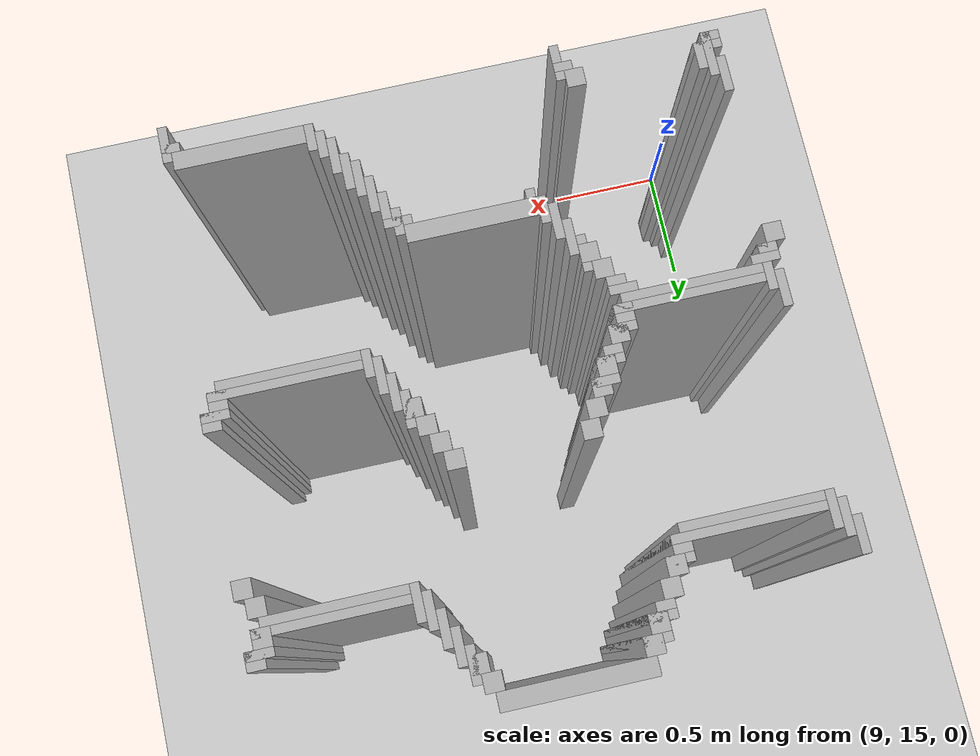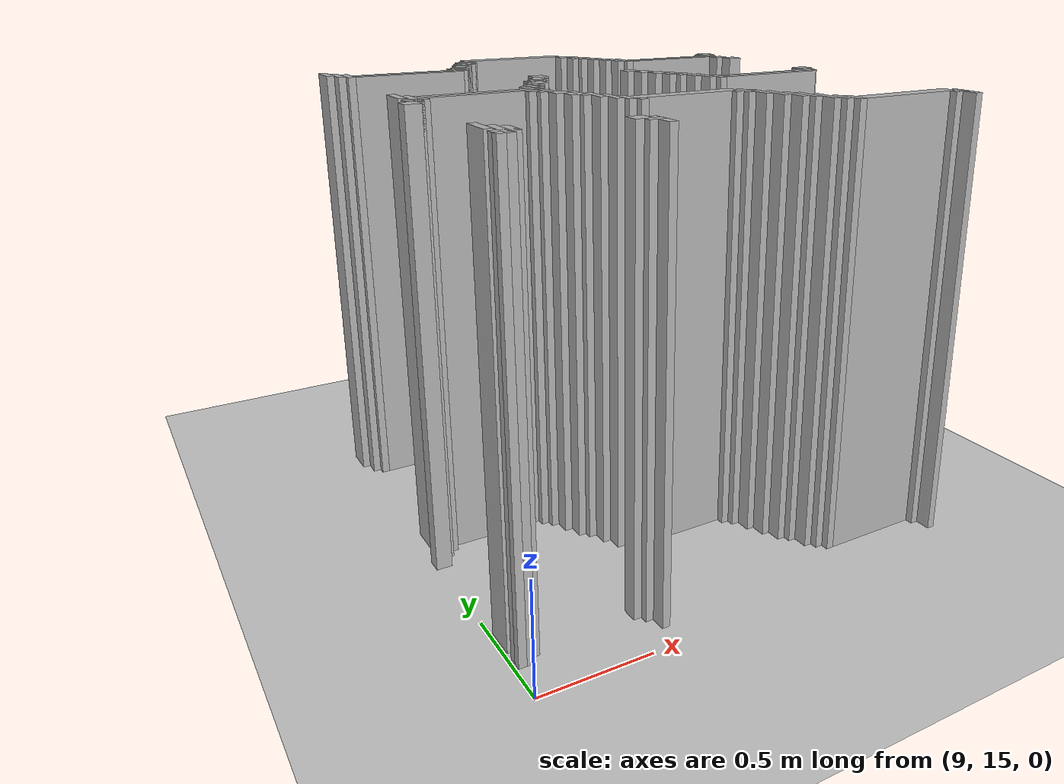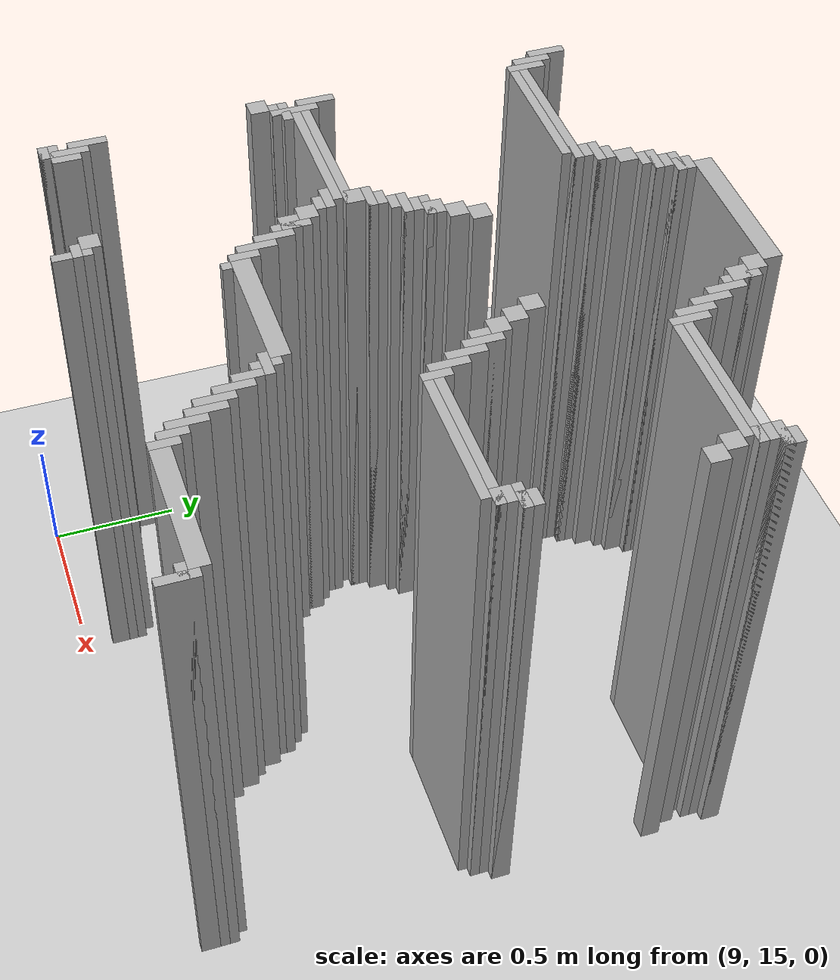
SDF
<sdf version="1.6">
 <world name="slam_world">
  <model name="ground_plane">
   <static>true</static>
   <link name="link">
    <collision name="collision">
     <geometry><plane><normal>0 0 1</normal><size>100 100</size></plane></geometry>
    </collision>
    <visual name="visual">
     <geometry><plane><normal>0 0 1</normal><size>100 100</size></plane></geometry>
     <material>
      <ambient>0.8 0.8 0.8 1</ambient>
      <diffuse>0.8 0.8 0.8 1</diffuse>
      <specular>0.8 0.8 0.8 1</specular>
     </material>
    </visual>
   </link>
  </model>
  <model name="wall_7">
   <static>true</static>
   <pose>10.058004640371228 17.366589327146173 1.0 0 0 0</pose>
   <link name="link">
    <collision name="collision">
     <geometry><box><size>0.5568445475638051 0.06960556844547564 2.0</size></box></geometry>
    </collision>
    <visual name="visual">
     <geometry><box><size>0.5568445475638051 0.06960556844547564 2.0</size></box></geometry>
     <material><ambient>0.5 0.5 0.5 1</ambient><diffuse>0.7 0.7 0.7 1</diffuse></material>
    </visual>
   </link>
  </model>
  <model name="wall_23">
   <static>true</static>
   <pose>9.779582366589327 17.296983758700694 1.0 0 0 0</pose>
   <link name="link">
    <collision name="collision">
     <geometry><box><size>0.06960556844547564 0.06960556844547564 2.0</size></box></geometry>
    </collision>
    <visual name="visual">
     <geometry><box><size>0.06960556844547564 0.06960556844547564 2.0</size></box></geometry>
     <material><ambient>0.5 0.5 0.5 1</ambient><diffuse>0.7 0.7 0.7 1</diffuse></material>
    </visual>
   </link>
  </model>
  <model name="wall_24">
   <static>true</static>
   <pose>10.336426914153131 17.296983758700694 1.0 0 0 0</pose>
   <link name="link">
    <collision name="collision">
     <geometry><box><size>0.06960556844547564 0.06960556844547564 2.0</size></box></geometry>
    </collision>
    <visual name="visual">
     <geometry><box><size>0.06960556844547564 0.06960556844547564 2.0</size></box></geometry>
     <material><ambient>0.5 0.5 0.5 1</ambient><diffuse>0.7 0.7 0.7 1</diffuse></material>
    </visual>
   </link>
  </model>
  <model name="wall_43">
   <static>true</static>
   <pose>9.762180974477959 17.279582366589327 1.0 0 0 0</pose>
   <link name="link">
    <collision name="collision">
     <geometry><box><size>0.10440835266821345 0.03480278422273782 2.0</size></box></geometry>
    </collision>
    <visual name="visual">
     <geometry><box><size>0.10440835266821345 0.03480278422273782 2.0</size></box></geometry>
     <material><ambient>0.5 0.5 0.5 1</ambient><diffuse>0.7 0.7 0.7 1</diffuse></material>
    </visual>
   </link>
  </model>
  <model name="wall_44">
   <static>true</static>
   <pose>10.38863109048724 17.22737819025522 1.0 0 0 0</pose>
   <link name="link">
    <collision name="collision">
     <geometry><box><size>0.03480278422273782 0.13921113689095127 2.0</size></box></geometry>
    </collision>
    <visual name="visual">
     <geometry><box><size>0.03480278422273782 0.13921113689095127 2.0</size></box></geometry>
     <material><ambient>0.5 0.5 0.5 1</ambient><diffuse>0.7 0.7 0.7 1</diffuse></material>
    </visual>
   </link>
  </model>
  <model name="wall_63">
   <static>true</static>
   <pose>9.744779582366588 17.22737819025522 1.0 0 0 0</pose>
   <link name="link">
    <collision name="collision">
     <geometry><box><size>0.06960556844547564 0.06960556844547564 2.0</size></box></geometry>
    </collision>
    <visual name="visual">
     <geometry><box><size>0.06960556844547564 0.06960556844547564 2.0</size></box></geometry>
     <material><ambient>0.5 0.5 0.5 1</ambient><diffuse>0.7 0.7 0.7 1</diffuse></material>
    </visual>
   </link>
  </model>
  <model name="wall_64">
   <static>true</static>
   <pose>10.37122969837587 17.22737819025522 1.0 0 0 0</pose>
   <link name="link">
    <collision name="collision">
     <geometry><box><size>0.06960556844547564 0.06960556844547564 2.0</size></box></geometry>
    </collision>
    <visual name="visual">
     <geometry><box><size>0.06960556844547564 0.06960556844547564 2.0</size></box></geometry>
     <material><ambient>0.5 0.5 0.5 1</ambient><diffuse>0.7 0.7 0.7 1</diffuse></material>
    </visual>
   </link>
  </model>
  <model name="wall_83">
   <static>true</static>
   <pose>9.72737819025522 17.209976798143853 1.0 0 0 0</pose>
   <link name="link">
    <collision name="collision">
     <geometry><box><size>0.10440835266821345 0.03480278422273782 2.0</size></box></geometry>
    </collision>
    <visual name="visual">
     <geometry><box><size>0.10440835266821345 0.03480278422273782 2.0</size></box></geometry>
     <material><ambient>0.5 0.5 0.5 1</ambient><diffuse>0.7 0.7 0.7 1</diffuse></material>
    </visual>
   </link>
  </model>
  <model name="wall_84">
   <static>true</static>
   <pose>10.423433874709977 17.157772621809745 1.0 0 0 0</pose>
   <link name="link">
    <collision name="collision">
     <geometry><box><size>0.03480278422273782 0.13921113689095127 2.0</size></box></geometry>
    </collision>
    <visual name="visual">
     <geometry><box><size>0.03480278422273782 0.13921113689095127 2.0</size></box></geometry>
     <material><ambient>0.5 0.5 0.5 1</ambient><diffuse>0.7 0.7 0.7 1</diffuse></material>
    </visual>
   </link>
  </model>
  <model name="wall_97">
   <static>true</static>
   <pose>9.70997679814385 17.17517401392111 1.0 0 0 0</pose>
   <link name="link">
    <collision name="collision">
     <geometry><box><size>0.06960556844547564 0.03480278422273782 2.0</size></box></geometry>
    </collision>
    <visual name="visual">
     <geometry><box><size>0.06960556844547564 0.03480278422273782 2.0</size></box></geometry>
     <material><ambient>0.5 0.5 0.5 1</ambient><diffuse>0.7 0.7 0.7 1</diffuse></material>
    </visual>
   </link>
  </model>
  <model name="wall_112">
   <static>true</static>
   <pose>8.996519721577727 17.08816705336427 1.0 0 0 0</pose>
   <link name="link">
    <collision name="collision">
     <geometry><box><size>0.03480278422273782 0.13921113689095127 2.0</size></box></geometry>
    </collision>
    <visual name="visual">
     <geometry><box><size>0.03480278422273782 0.13921113689095127 2.0</size></box></geometry>
     <material><ambient>0.5 0.5 0.5 1</ambient><diffuse>0.7 0.7 0.7 1</diffuse></material>
    </visual>
   </link>
  </model>
  <model name="wall_113">
   <static>true</static>
   <pose>9.675174013921113 17.122969837587007 1.0 0 0 0</pose>
   <link name="link">
    <collision name="collision">
     <geometry><box><size>0.06960556844547564 0.06960556844547564 2.0</size></box></geometry>
    </collision>
    <visual name="visual">
     <geometry><box><size>0.06960556844547564 0.06960556844547564 2.0</size></box></geometry>
     <material><ambient>0.5 0.5 0.5 1</ambient><diffuse>0.7 0.7 0.7 1</diffuse></material>
    </visual>
   </link>
  </model>
  <model name="wall_114">
   <static>true</static>
   <pose>10.458236658932714 17.08816705336427 1.0 0 0 0</pose>
   <link name="link">
    <collision name="collision">
     <geometry><box><size>0.03480278422273782 0.13921113689095127 2.0</size></box></geometry>
    </collision>
    <visual name="visual">
     <geometry><box><size>0.03480278422273782 0.13921113689095127 2.0</size></box></geometry>
     <material><ambient>0.5 0.5 0.5 1</ambient><diffuse>0.7 0.7 0.7 1</diffuse></material>
    </visual>
   </link>
  </model>
  <model name="wall_132">
   <static>true</static>
   <pose>9.031322505800464 17.01856148491879 1.0 0 0 0</pose>
   <link name="link">
    <collision name="collision">
     <geometry><box><size>0.03480278422273782 0.13921113689095127 2.0</size></box></geometry>
    </collision>
    <visual name="visual">
     <geometry><box><size>0.03480278422273782 0.13921113689095127 2.0</size></box></geometry>
     <material><ambient>0.5 0.5 0.5 1</ambient><diffuse>0.7 0.7 0.7 1</diffuse></material>
    </visual>
   </link>
  </model>
  <model name="wall_133">
   <static>true</static>
   <pose>9.640371229698376 17.053364269141532 1.0 0 0 0</pose>
   <link name="link">
    <collision name="collision">
     <geometry><box><size>0.06960556844547564 0.06960556844547564 2.0</size></box></geometry>
    </collision>
    <visual name="visual">
     <geometry><box><size>0.06960556844547564 0.06960556844547564 2.0</size></box></geometry>
     <material><ambient>0.5 0.5 0.5 1</ambient><diffuse>0.7 0.7 0.7 1</diffuse></material>
    </visual>
   </link>
  </model>
  <model name="wall_134">
   <static>true</static>
   <pose>10.493039443155451 17.01856148491879 1.0 0 0 0</pose>
   <link name="link">
    <collision name="collision">
     <geometry><box><size>0.03480278422273782 0.13921113689095127 2.0</size></box></geometry>
    </collision>
    <visual name="visual">
     <geometry><box><size>0.03480278422273782 0.13921113689095127 2.0</size></box></geometry>
     <material><ambient>0.5 0.5 0.5 1</ambient><diffuse>0.7 0.7 0.7 1</diffuse></material>
    </visual>
   </link>
  </model>
  <model name="wall_135">
   <static>true</static>
   <pose>11.102088167053363 17.053364269141532 1.0 0 0 0</pose>
   <link name="link">
    <collision name="collision">
     <geometry><box><size>0.06960556844547564 0.06960556844547564 2.0</size></box></geometry>
    </collision>
    <visual name="visual">
     <geometry><box><size>0.06960556844547564 0.06960556844547564 2.0</size></box></geometry>
     <material><ambient>0.5 0.5 0.5 1</ambient><diffuse>0.7 0.7 0.7 1</diffuse></material>
    </visual>
   </link>
  </model>
  <model name="wall_152">
   <static>true</static>
   <pose>9.066125290023201 16.983758700696054 1.0 0 0 0</pose>
   <link name="link">
    <collision name="collision">
     <geometry><box><size>0.03480278422273782 0.13921113689095127 2.0</size></box></geometry>
    </collision>
    <visual name="visual">
     <geometry><box><size>0.03480278422273782 0.13921113689095127 2.0</size></box></geometry>
     <material><ambient>0.5 0.5 0.5 1</ambient><diffuse>0.7 0.7 0.7 1</diffuse></material>
    </visual>
   </link>
  </model>
  <model name="wall_153">
   <static>true</static>
   <pose>9.622969837587007 17.035962877030162 1.0 0 0 0</pose>
   <link name="link">
    <collision name="collision">
     <geometry><box><size>0.10440835266821345 0.03480278422273782 2.0</size></box></geometry>
    </collision>
    <visual name="visual">
     <geometry><box><size>0.10440835266821345 0.03480278422273782 2.0</size></box></geometry>
     <material><ambient>0.5 0.5 0.5 1</ambient><diffuse>0.7 0.7 0.7 1</diffuse></material>
    </visual>
   </link>
  </model>
  <model name="wall_154">
   <static>true</static>
   <pose>10.52784222737819 16.983758700696054 1.0 0 0 0</pose>
   <link name="link">
    <collision name="collision">
     <geometry><box><size>0.03480278422273782 0.13921113689095127 2.0</size></box></geometry>
    </collision>
    <visual name="visual">
     <geometry><box><size>0.03480278422273782 0.13921113689095127 2.0</size></box></geometry>
     <material><ambient>0.5 0.5 0.5 1</ambient><diffuse>0.7 0.7 0.7 1</diffuse></material>
    </visual>
   </link>
  </model>
  <model name="wall_155">
   <static>true</static>
   <pose>11.084686774941995 17.035962877030162 1.0 0 0 0</pose>
   <link name="link">
    <collision name="collision">
     <geometry><box><size>0.10440835266821345 0.03480278422273782 2.0</size></box></geometry>
    </collision>
    <visual name="visual">
     <geometry><box><size>0.10440835266821345 0.03480278422273782 2.0</size></box></geometry>
     <material><ambient>0.5 0.5 0.5 1</ambient><diffuse>0.7 0.7 0.7 1</diffuse></material>
    </visual>
   </link>
  </model>
  <model name="wall_167">
   <static>true</static>
   <pose>9.605568445475638 16.983758700696054 1.0 0 0 0</pose>
   <link name="link">
    <collision name="collision">
     <geometry><box><size>0.06960556844547564 0.06960556844547564 2.0</size></box></geometry>
    </collision>
    <visual name="visual">
     <geometry><box><size>0.06960556844547564 0.06960556844547564 2.0</size></box></geometry>
     <material><ambient>0.5 0.5 0.5 1</ambient><diffuse>0.7 0.7 0.7 1</diffuse></material>
    </visual>
   </link>
  </model>
  <model name="wall_168">
   <static>true</static>
   <pose>11.067285382830626 16.983758700696054 1.0 0 0 0</pose>
   <link name="link">
    <collision name="collision">
     <geometry><box><size>0.06960556844547564 0.06960556844547564 2.0</size></box></geometry>
    </collision>
    <visual name="visual">
     <geometry><box><size>0.06960556844547564 0.06960556844547564 2.0</size></box></geometry>
     <material><ambient>0.5 0.5 0.5 1</ambient><diffuse>0.7 0.7 0.7 1</diffuse></material>
    </visual>
   </link>
  </model>
  <model name="wall_177">
   <static>true</static>
   <pose>9.361948955916473 16.966357308584687 1.0 0 0 0</pose>
   <link name="link">
    <collision name="collision">
     <geometry><box><size>0.5568445475638051 0.03480278422273782 2.0</size></box></geometry>
    </collision>
    <visual name="visual">
     <geometry><box><size>0.5568445475638051 0.03480278422273782 2.0</size></box></geometry>
     <material><ambient>0.5 0.5 0.5 1</ambient><diffuse>0.7 0.7 0.7 1</diffuse></material>
    </visual>
   </link>
  </model>
  <model name="wall_178">
   <static>true</static>
   <pose>10.82366589327146 16.966357308584687 1.0 0 0 0</pose>
   <link name="link">
    <collision name="collision">
     <geometry><box><size>0.5568445475638051 0.03480278422273782 2.0</size></box></geometry>
    </collision>
    <visual name="visual">
     <geometry><box><size>0.5568445475638051 0.03480278422273782 2.0</size></box></geometry>
     <material><ambient>0.5 0.5 0.5 1</ambient><diffuse>0.7 0.7 0.7 1</diffuse></material>
    </visual>
   </link>
  </model>
  <model name="wall_188">
   <static>true</static>
   <pose>9.344547563805104 16.93155452436195 1.0 0 0 0</pose>
   <link name="link">
    <collision name="collision">
     <geometry><box><size>0.5220417633410672 0.03480278422273782 2.0</size></box></geometry>
    </collision>
    <visual name="visual">
     <geometry><box><size>0.5220417633410672 0.03480278422273782 2.0</size></box></geometry>
     <material><ambient>0.5 0.5 0.5 1</ambient><diffuse>0.7 0.7 0.7 1</diffuse></material>
    </visual>
   </link>
  </model>
  <model name="wall_189">
   <static>true</static>
   <pose>10.806264501160092 16.93155452436195 1.0 0 0 0</pose>
   <link name="link">
    <collision name="collision">
     <geometry><box><size>0.5220417633410672 0.03480278422273782 2.0</size></box></geometry>
    </collision>
    <visual name="visual">
     <geometry><box><size>0.5220417633410672 0.03480278422273782 2.0</size></box></geometry>
     <material><ambient>0.5 0.5 0.5 1</ambient><diffuse>0.7 0.7 0.7 1</diffuse></material>
    </visual>
   </link>
  </model>
  <model name="wall_196">
   <static>true</static>
   <pose>11.067285382830626 16.87935034802784 1.0 0 0 0</pose>
   <link name="link">
    <collision name="collision">
     <geometry><box><size>0.06960556844547564 0.06960556844547564 2.0</size></box></geometry>
    </collision>
    <visual name="visual">
     <geometry><box><size>0.06960556844547564 0.06960556844547564 2.0</size></box></geometry>
     <material><ambient>0.5 0.5 0.5 1</ambient><diffuse>0.7 0.7 0.7 1</diffuse></material>
    </visual>
   </link>
  </model>
  <model name="wall_212">
   <static>true</static>
   <pose>11.102088167053363 16.809744779582367 1.0 0 0 0</pose>
   <link name="link">
    <collision name="collision">
     <geometry><box><size>0.06960556844547564 0.06960556844547564 2.0</size></box></geometry>
    </collision>
    <visual name="visual">
     <geometry><box><size>0.06960556844547564 0.06960556844547564 2.0</size></box></geometry>
     <material><ambient>0.5 0.5 0.5 1</ambient><diffuse>0.7 0.7 0.7 1</diffuse></material>
    </visual>
   </link>
  </model>
  <model name="wall_266">
   <static>true</static>
   <pose>9.814385150812065 16.531322505800464 1.0 0 0 0</pose>
   <link name="link">
    <collision name="collision">
     <geometry><box><size>0.06960556844547564 0.06960556844547564 2.0</size></box></geometry>
    </collision>
    <visual name="visual">
     <geometry><box><size>0.06960556844547564 0.06960556844547564 2.0</size></box></geometry>
     <material><ambient>0.5 0.5 0.5 1</ambient><diffuse>0.7 0.7 0.7 1</diffuse></material>
    </visual>
   </link>
  </model>
  <model name="wall_267">
   <static>true</static>
   <pose>10.301624129930394 16.531322505800464 1.0 0 0 0</pose>
   <link name="link">
    <collision name="collision">
     <geometry><box><size>0.06960556844547564 0.06960556844547564 2.0</size></box></geometry>
    </collision>
    <visual name="visual">
     <geometry><box><size>0.06960556844547564 0.06960556844547564 2.0</size></box></geometry>
     <material><ambient>0.5 0.5 0.5 1</ambient><diffuse>0.7 0.7 0.7 1</diffuse></material>
    </visual>
   </link>
  </model>
  <model name="wall_287">
   <static>true</static>
   <pose>9.779582366589327 16.46171693735499 1.0 0 0 0</pose>
   <link name="link">
    <collision name="collision">
     <geometry><box><size>0.06960556844547564 0.06960556844547564 2.0</size></box></geometry>
    </collision>
    <visual name="visual">
     <geometry><box><size>0.06960556844547564 0.06960556844547564 2.0</size></box></geometry>
     <material><ambient>0.5 0.5 0.5 1</ambient><diffuse>0.7 0.7 0.7 1</diffuse></material>
    </visual>
   </link>
  </model>
  <model name="wall_288">
   <static>true</static>
   <pose>10.336426914153131 16.46171693735499 1.0 0 0 0</pose>
   <link name="link">
    <collision name="collision">
     <geometry><box><size>0.06960556844547564 0.06960556844547564 2.0</size></box></geometry>
    </collision>
    <visual name="visual">
     <geometry><box><size>0.06960556844547564 0.06960556844547564 2.0</size></box></geometry>
     <material><ambient>0.5 0.5 0.5 1</ambient><diffuse>0.7 0.7 0.7 1</diffuse></material>
    </visual>
   </link>
  </model>
  <model name="wall_310">
   <static>true</static>
   <pose>9.744779582366588 16.39211136890951 1.0 0 0 0</pose>
   <link name="link">
    <collision name="collision">
     <geometry><box><size>0.06960556844547564 0.06960556844547564 2.0</size></box></geometry>
    </collision>
    <visual name="visual">
     <geometry><box><size>0.06960556844547564 0.06960556844547564 2.0</size></box></geometry>
     <material><ambient>0.5 0.5 0.5 1</ambient><diffuse>0.7 0.7 0.7 1</diffuse></material>
    </visual>
   </link>
  </model>
  <model name="wall_311">
   <static>true</static>
   <pose>10.37122969837587 16.39211136890951 1.0 0 0 0</pose>
   <link name="link">
    <collision name="collision">
     <geometry><box><size>0.06960556844547564 0.06960556844547564 2.0</size></box></geometry>
    </collision>
    <visual name="visual">
     <geometry><box><size>0.06960556844547564 0.06960556844547564 2.0</size></box></geometry>
     <material><ambient>0.5 0.5 0.5 1</ambient><diffuse>0.7 0.7 0.7 1</diffuse></material>
    </visual>
   </link>
  </model>
  <model name="wall_327">
   <static>true</static>
   <pose>9.72737819025522 16.374709976798144 1.0 0 0 0</pose>
   <link name="link">
    <collision name="collision">
     <geometry><box><size>0.10440835266821345 0.03480278422273782 2.0</size></box></geometry>
    </collision>
    <visual name="visual">
     <geometry><box><size>0.10440835266821345 0.03480278422273782 2.0</size></box></geometry>
     <material><ambient>0.5 0.5 0.5 1</ambient><diffuse>0.7 0.7 0.7 1</diffuse></material>
    </visual>
   </link>
  </model>
  <model name="wall_328">
   <static>true</static>
   <pose>10.423433874709977 16.322505800464036 1.0 0 0 0</pose>
   <link name="link">
    <collision name="collision">
     <geometry><box><size>0.03480278422273782 0.13921113689095127 2.0</size></box></geometry>
    </collision>
    <visual name="visual">
     <geometry><box><size>0.03480278422273782 0.13921113689095127 2.0</size></box></geometry>
     <material><ambient>0.5 0.5 0.5 1</ambient><diffuse>0.7 0.7 0.7 1</diffuse></material>
    </visual>
   </link>
  </model>
  <model name="wall_344">
   <static>true</static>
   <pose>9.70997679814385 16.322505800464036 1.0 0 0 0</pose>
   <link name="link">
    <collision name="collision">
     <geometry><box><size>0.06960556844547564 0.06960556844547564 2.0</size></box></geometry>
    </collision>
    <visual name="visual">
     <geometry><box><size>0.06960556844547564 0.06960556844547564 2.0</size></box></geometry>
     <material><ambient>0.5 0.5 0.5 1</ambient><diffuse>0.7 0.7 0.7 1</diffuse></material>
    </visual>
   </link>
  </model>
  <model name="wall_345">
   <static>true</static>
   <pose>10.406032482598608 16.322505800464036 1.0 0 0 0</pose>
   <link name="link">
    <collision name="collision">
     <geometry><box><size>0.06960556844547564 0.06960556844547564 2.0</size></box></geometry>
    </collision>
    <visual name="visual">
     <geometry><box><size>0.06960556844547564 0.06960556844547564 2.0</size></box></geometry>
     <material><ambient>0.5 0.5 0.5 1</ambient><diffuse>0.7 0.7 0.7 1</diffuse></material>
    </visual>
   </link>
  </model>
  <model name="wall_361">
   <static>true</static>
   <pose>9.692575406032482 16.30510440835267 1.0 0 0 0</pose>
   <link name="link">
    <collision name="collision">
     <geometry><box><size>0.10440835266821345 0.03480278422273782 2.0</size></box></geometry>
    </collision>
    <visual name="visual">
     <geometry><box><size>0.10440835266821345 0.03480278422273782 2.0</size></box></geometry>
     <material><ambient>0.5 0.5 0.5 1</ambient><diffuse>0.7 0.7 0.7 1</diffuse></material>
    </visual>
   </link>
  </model>
  <model name="wall_362">
   <static>true</static>
   <pose>10.458236658932714 16.25290023201856 1.0 0 0 0</pose>
   <link name="link">
    <collision name="collision">
     <geometry><box><size>0.03480278422273782 0.13921113689095127 2.0</size></box></geometry>
    </collision>
    <visual name="visual">
     <geometry><box><size>0.03480278422273782 0.13921113689095127 2.0</size></box></geometry>
     <material><ambient>0.5 0.5 0.5 1</ambient><diffuse>0.7 0.7 0.7 1</diffuse></material>
    </visual>
   </link>
  </model>
  <model name="wall_372">
   <static>true</static>
   <pose>9.675174013921113 16.270301624129928 1.0 0 0 0</pose>
   <link name="link">
    <collision name="collision">
     <geometry><box><size>0.06960556844547564 0.03480278422273782 2.0</size></box></geometry>
    </collision>
    <visual name="visual">
     <geometry><box><size>0.06960556844547564 0.03480278422273782 2.0</size></box></geometry>
     <material><ambient>0.5 0.5 0.5 1</ambient><diffuse>0.7 0.7 0.7 1</diffuse></material>
    </visual>
   </link>
  </model>
  <model name="wall_385">
   <static>true</static>
   <pose>9.031322505800464 16.183294663573086 1.0 0 0 0</pose>
   <link name="link">
    <collision name="collision">
     <geometry><box><size>0.03480278422273782 0.13921113689095127 2.0</size></box></geometry>
    </collision>
    <visual name="visual">
     <geometry><box><size>0.03480278422273782 0.13921113689095127 2.0</size></box></geometry>
     <material><ambient>0.5 0.5 0.5 1</ambient><diffuse>0.7 0.7 0.7 1</diffuse></material>
    </visual>
   </link>
  </model>
  <model name="wall_386">
   <static>true</static>
   <pose>9.640371229698376 16.218097447795824 1.0 0 0 0</pose>
   <link name="link">
    <collision name="collision">
     <geometry><box><size>0.06960556844547564 0.06960556844547564 2.0</size></box></geometry>
    </collision>
    <visual name="visual">
     <geometry><box><size>0.06960556844547564 0.06960556844547564 2.0</size></box></geometry>
     <material><ambient>0.5 0.5 0.5 1</ambient><diffuse>0.7 0.7 0.7 1</diffuse></material>
    </visual>
   </link>
  </model>
  <model name="wall_387">
   <static>true</static>
   <pose>10.493039443155451 16.183294663573086 1.0 0 0 0</pose>
   <link name="link">
    <collision name="collision">
     <geometry><box><size>0.03480278422273782 0.13921113689095127 2.0</size></box></geometry>
    </collision>
    <visual name="visual">
     <geometry><box><size>0.03480278422273782 0.13921113689095127 2.0</size></box></geometry>
     <material><ambient>0.5 0.5 0.5 1</ambient><diffuse>0.7 0.7 0.7 1</diffuse></material>
    </visual>
   </link>
  </model>
  <model name="wall_388">
   <static>true</static>
   <pose>11.102088167053363 16.218097447795824 1.0 0 0 0</pose>
   <link name="link">
    <collision name="collision">
     <geometry><box><size>0.06960556844547564 0.06960556844547564 2.0</size></box></geometry>
    </collision>
    <visual name="visual">
     <geometry><box><size>0.06960556844547564 0.06960556844547564 2.0</size></box></geometry>
     <material><ambient>0.5 0.5 0.5 1</ambient><diffuse>0.7 0.7 0.7 1</diffuse></material>
    </visual>
   </link>
  </model>
  <model name="wall_397">
   <static>true</static>
   <pose>9.622969837587007 16.200696055684453 1.0 0 0 0</pose>
   <link name="link">
    <collision name="collision">
     <geometry><box><size>0.10440835266821345 0.03480278422273782 2.0</size></box></geometry>
    </collision>
    <visual name="visual">
     <geometry><box><size>0.10440835266821345 0.03480278422273782 2.0</size></box></geometry>
     <material><ambient>0.5 0.5 0.5 1</ambient><diffuse>0.7 0.7 0.7 1</diffuse></material>
    </visual>
   </link>
  </model>
  <model name="wall_398">
   <static>true</static>
   <pose>11.084686774941995 16.200696055684453 1.0 0 0 0</pose>
   <link name="link">
    <collision name="collision">
     <geometry><box><size>0.10440835266821345 0.03480278422273782 2.0</size></box></geometry>
    </collision>
    <visual name="visual">
     <geometry><box><size>0.10440835266821345 0.03480278422273782 2.0</size></box></geometry>
     <material><ambient>0.5 0.5 0.5 1</ambient><diffuse>0.7 0.7 0.7 1</diffuse></material>
    </visual>
   </link>
  </model>
  <model name="wall_410">
   <static>true</static>
   <pose>9.066125290023201 16.09628770301624 1.0 0 0 0</pose>
   <link name="link">
    <collision name="collision">
     <geometry><box><size>0.03480278422273782 0.17401392111368907 2.0</size></box></geometry>
    </collision>
    <visual name="visual">
     <geometry><box><size>0.03480278422273782 0.17401392111368907 2.0</size></box></geometry>
     <material><ambient>0.5 0.5 0.5 1</ambient><diffuse>0.7 0.7 0.7 1</diffuse></material>
    </visual>
   </link>
  </model>
  <model name="wall_411">
   <static>true</static>
   <pose>9.605568445475638 16.14849187935035 1.0 0 0 0</pose>
   <link name="link">
    <collision name="collision">
     <geometry><box><size>0.06960556844547564 0.06960556844547564 2.0</size></box></geometry>
    </collision>
    <visual name="visual">
     <geometry><box><size>0.06960556844547564 0.06960556844547564 2.0</size></box></geometry>
     <material><ambient>0.5 0.5 0.5 1</ambient><diffuse>0.7 0.7 0.7 1</diffuse></material>
    </visual>
   </link>
  </model>
  <model name="wall_412">
   <static>true</static>
   <pose>10.52784222737819 16.13109048723898 1.0 0 0 0</pose>
   <link name="link">
    <collision name="collision">
     <geometry><box><size>0.03480278422273782 0.10440835266821345 2.0</size></box></geometry>
    </collision>
    <visual name="visual">
     <geometry><box><size>0.03480278422273782 0.10440835266821345 2.0</size></box></geometry>
     <material><ambient>0.5 0.5 0.5 1</ambient><diffuse>0.7 0.7 0.7 1</diffuse></material>
    </visual>
   </link>
  </model>
  <model name="wall_413">
   <static>true</static>
   <pose>11.067285382830626 16.14849187935035 1.0 0 0 0</pose>
   <link name="link">
    <collision name="collision">
     <geometry><box><size>0.06960556844547564 0.06960556844547564 2.0</size></box></geometry>
    </collision>
    <visual name="visual">
     <geometry><box><size>0.06960556844547564 0.06960556844547564 2.0</size></box></geometry>
     <material><ambient>0.5 0.5 0.5 1</ambient><diffuse>0.7 0.7 0.7 1</diffuse></material>
    </visual>
   </link>
  </model>
  <model name="wall_426">
   <static>true</static>
   <pose>9.361948955916473 16.13109048723898 1.0 0 0 0</pose>
   <link name="link">
    <collision name="collision">
     <geometry><box><size>0.5568445475638051 0.03480278422273782 2.0</size></box></geometry>
    </collision>
    <visual name="visual">
     <geometry><box><size>0.5568445475638051 0.03480278422273782 2.0</size></box></geometry>
     <material><ambient>0.5 0.5 0.5 1</ambient><diffuse>0.7 0.7 0.7 1</diffuse></material>
    </visual>
   </link>
  </model>
  <model name="wall_427">
   <static>true</static>
   <pose>10.82366589327146 16.13109048723898 1.0 0 0 0</pose>
   <link name="link">
    <collision name="collision">
     <geometry><box><size>0.5568445475638051 0.03480278422273782 2.0</size></box></geometry>
    </collision>
    <visual name="visual">
     <geometry><box><size>0.5568445475638051 0.03480278422273782 2.0</size></box></geometry>
     <material><ambient>0.5 0.5 0.5 1</ambient><diffuse>0.7 0.7 0.7 1</diffuse></material>
    </visual>
   </link>
  </model>
  <model name="wall_437">
   <static>true</static>
   <pose>9.344547563805104 16.09628770301624 1.0 0 0 0</pose>
   <link name="link">
    <collision name="collision">
     <geometry><box><size>0.5220417633410672 0.03480278422273782 2.0</size></box></geometry>
    </collision>
    <visual name="visual">
     <geometry><box><size>0.5220417633410672 0.03480278422273782 2.0</size></box></geometry>
     <material><ambient>0.5 0.5 0.5 1</ambient><diffuse>0.7 0.7 0.7 1</diffuse></material>
    </visual>
   </link>
  </model>
  <model name="wall_438">
   <static>true</static>
   <pose>10.806264501160092 16.09628770301624 1.0 0 0 0</pose>
   <link name="link">
    <collision name="collision">
     <geometry><box><size>0.5220417633410672 0.03480278422273782 2.0</size></box></geometry>
    </collision>
    <visual name="visual">
     <geometry><box><size>0.5220417633410672 0.03480278422273782 2.0</size></box></geometry>
     <material><ambient>0.5 0.5 0.5 1</ambient><diffuse>0.7 0.7 0.7 1</diffuse></material>
    </visual>
   </link>
  </model>
  <model name="wall_450">
   <static>true</static>
   <pose>9.066125290023201 16.061484918793504 1.0 0 0 0</pose>
   <link name="link">
    <collision name="collision">
     <geometry><box><size>0.10440835266821345 0.03480278422273782 2.0</size></box></geometry>
    </collision>
    <visual name="visual">
     <geometry><box><size>0.10440835266821345 0.03480278422273782 2.0</size></box></geometry>
     <material><ambient>0.5 0.5 0.5 1</ambient><diffuse>0.7 0.7 0.7 1</diffuse></material>
    </visual>
   </link>
  </model>
  <model name="wall_451">
   <static>true</static>
   <pose>9.588167053364268 16.061484918793504 1.0 0 0 0</pose>
   <link name="link">
    <collision name="collision">
     <geometry><box><size>0.10440835266821345 0.03480278422273782 2.0</size></box></geometry>
    </collision>
    <visual name="visual">
     <geometry><box><size>0.10440835266821345 0.03480278422273782 2.0</size></box></geometry>
     <material><ambient>0.5 0.5 0.5 1</ambient><diffuse>0.7 0.7 0.7 1</diffuse></material>
    </visual>
   </link>
  </model>
  <model name="wall_463">
   <static>true</static>
   <pose>9.048723897911833 16.026682134570766 1.0 0 0 0</pose>
   <link name="link">
    <collision name="collision">
     <geometry><box><size>0.06960556844547564 0.03480278422273782 2.0</size></box></geometry>
    </collision>
    <visual name="visual">
     <geometry><box><size>0.06960556844547564 0.03480278422273782 2.0</size></box></geometry>
     <material><ambient>0.5 0.5 0.5 1</ambient><diffuse>0.7 0.7 0.7 1</diffuse></material>
    </visual>
   </link>
  </model>
  <model name="wall_464">
   <static>true</static>
   <pose>9.605568445475638 16.026682134570766 1.0 0 0 0</pose>
   <link name="link">
    <collision name="collision">
     <geometry><box><size>0.06960556844547564 0.03480278422273782 2.0</size></box></geometry>
    </collision>
    <visual name="visual">
     <geometry><box><size>0.06960556844547564 0.03480278422273782 2.0</size></box></geometry>
     <material><ambient>0.5 0.5 0.5 1</ambient><diffuse>0.7 0.7 0.7 1</diffuse></material>
    </visual>
   </link>
  </model>
  <model name="wall_476">
   <static>true</static>
   <pose>9.013921113689095 15.974477958236658 1.0 0 0 0</pose>
   <link name="link">
    <collision name="collision">
     <geometry><box><size>0.06960556844547564 0.06960556844547564 2.0</size></box></geometry>
    </collision>
    <visual name="visual">
     <geometry><box><size>0.06960556844547564 0.06960556844547564 2.0</size></box></geometry>
     <material><ambient>0.5 0.5 0.5 1</ambient><diffuse>0.7 0.7 0.7 1</diffuse></material>
    </visual>
   </link>
  </model>
  <model name="wall_477">
   <static>true</static>
   <pose>9.640371229698376 15.974477958236658 1.0 0 0 0</pose>
   <link name="link">
    <collision name="collision">
     <geometry><box><size>0.06960556844547564 0.06960556844547564 2.0</size></box></geometry>
    </collision>
    <visual name="visual">
     <geometry><box><size>0.06960556844547564 0.06960556844547564 2.0</size></box></geometry>
     <material><ambient>0.5 0.5 0.5 1</ambient><diffuse>0.7 0.7 0.7 1</diffuse></material>
    </visual>
   </link>
  </model>
  <model name="wall_490">
   <static>true</static>
   <pose>9.692575406032482 15.904872389791183 1.0 0 0 0</pose>
   <link name="link">
    <collision name="collision">
     <geometry><box><size>0.03480278422273782 0.13921113689095127 2.0</size></box></geometry>
    </collision>
    <visual name="visual">
     <geometry><box><size>0.03480278422273782 0.13921113689095127 2.0</size></box></geometry>
     <material><ambient>0.5 0.5 0.5 1</ambient><diffuse>0.7 0.7 0.7 1</diffuse></material>
    </visual>
   </link>
  </model>
  <model name="wall_499">
   <static>true</static>
   <pose>9.675174013921113 15.904872389791183 1.0 0 0 0</pose>
   <link name="link">
    <collision name="collision">
     <geometry><box><size>0.06960556844547564 0.06960556844547564 2.0</size></box></geometry>
    </collision>
    <visual name="visual">
     <geometry><box><size>0.06960556844547564 0.06960556844547564 2.0</size></box></geometry>
     <material><ambient>0.5 0.5 0.5 1</ambient><diffuse>0.7 0.7 0.7 1</diffuse></material>
    </visual>
   </link>
  </model>
  <model name="wall_512">
   <static>true</static>
   <pose>9.72737819025522 15.835266821345707 1.0 0 0 0</pose>
   <link name="link">
    <collision name="collision">
     <geometry><box><size>0.03480278422273782 0.13921113689095127 2.0</size></box></geometry>
    </collision>
    <visual name="visual">
     <geometry><box><size>0.03480278422273782 0.13921113689095127 2.0</size></box></geometry>
     <material><ambient>0.5 0.5 0.5 1</ambient><diffuse>0.7 0.7 0.7 1</diffuse></material>
    </visual>
   </link>
  </model>
  <model name="wall_532">
   <static>true</static>
   <pose>9.762180974477959 15.765661252900232 1.0 0 0 0</pose>
   <link name="link">
    <collision name="collision">
     <geometry><box><size>0.03480278422273782 0.13921113689095127 2.0</size></box></geometry>
    </collision>
    <visual name="visual">
     <geometry><box><size>0.03480278422273782 0.13921113689095127 2.0</size></box></geometry>
     <material><ambient>0.5 0.5 0.5 1</ambient><diffuse>0.7 0.7 0.7 1</diffuse></material>
    </visual>
   </link>
  </model>
  <model name="wall_545">
   <static>true</static>
   <pose>9.796983758700696 15.713457076566124 1.0 0 0 0</pose>
   <link name="link">
    <collision name="collision">
     <geometry><box><size>0.03480278422273782 0.10440835266821345 2.0</size></box></geometry>
    </collision>
    <visual name="visual">
     <geometry><box><size>0.03480278422273782 0.10440835266821345 2.0</size></box></geometry>
     <material><ambient>0.5 0.5 0.5 1</ambient><diffuse>0.7 0.7 0.7 1</diffuse></material>
    </visual>
   </link>
  </model>
  <model name="wall_557">
   <static>true</static>
   <pose>10.058004640371228 15.696055684454755 1.0 0 0 0</pose>
   <link name="link">
    <collision name="collision">
     <geometry><box><size>0.4872389791183295 0.06960556844547564 2.0</size></box></geometry>
    </collision>
    <visual name="visual">
     <geometry><box><size>0.4872389791183295 0.06960556844547564 2.0</size></box></geometry>
     <material><ambient>0.5 0.5 0.5 1</ambient><diffuse>0.7 0.7 0.7 1</diffuse></material>
    </visual>
   </link>
  </model>
  <model name="wall_570">
   <static>true</static>
   <pose>10.319025522041763 15.64385150812065 1.0 0 0 0</pose>
   <link name="link">
    <collision name="collision">
     <geometry><box><size>0.03480278422273782 0.10440835266821345 2.0</size></box></geometry>
    </collision>
    <visual name="visual">
     <geometry><box><size>0.03480278422273782 0.10440835266821345 2.0</size></box></geometry>
     <material><ambient>0.5 0.5 0.5 1</ambient><diffuse>0.7 0.7 0.7 1</diffuse></material>
    </visual>
   </link>
  </model>
  <model name="wall_585">
   <static>true</static>
   <pose>9.831786542923433 15.64385150812065 1.0 0 0 0</pose>
   <link name="link">
    <collision name="collision">
     <geometry><box><size>0.03480278422273782 0.03480278422273782 2.0</size></box></geometry>
    </collision>
    <visual name="visual">
     <geometry><box><size>0.03480278422273782 0.03480278422273782 2.0</size></box></geometry>
     <material><ambient>0.5 0.5 0.5 1</ambient><diffuse>0.7 0.7 0.7 1</diffuse></material>
    </visual>
   </link>
  </model>
  <model name="wall_586">
   <static>true</static>
   <pose>10.319025522041763 15.64385150812065 1.0 0 0 0</pose>
   <link name="link">
    <collision name="collision">
     <geometry><box><size>0.10440835266821345 0.03480278422273782 2.0</size></box></geometry>
    </collision>
    <visual name="visual">
     <geometry><box><size>0.10440835266821345 0.03480278422273782 2.0</size></box></geometry>
     <material><ambient>0.5 0.5 0.5 1</ambient><diffuse>0.7 0.7 0.7 1</diffuse></material>
    </visual>
   </link>
  </model>
  <model name="wall_602">
   <static>true</static>
   <pose>10.3538283062645 15.574245939675173 1.0 0 0 0</pose>
   <link name="link">
    <collision name="collision">
     <geometry><box><size>0.03480278422273782 0.10440835266821345 2.0</size></box></geometry>
    </collision>
    <visual name="visual">
     <geometry><box><size>0.03480278422273782 0.10440835266821345 2.0</size></box></geometry>
     <material><ambient>0.5 0.5 0.5 1</ambient><diffuse>0.7 0.7 0.7 1</diffuse></material>
    </visual>
   </link>
  </model>
  <model name="wall_618">
   <static>true</static>
   <pose>10.38863109048724 15.522041763341067 1.0 0 0 0</pose>
   <link name="link">
    <collision name="collision">
     <geometry><box><size>0.03480278422273782 0.13921113689095127 2.0</size></box></geometry>
    </collision>
    <visual name="visual">
     <geometry><box><size>0.03480278422273782 0.13921113689095127 2.0</size></box></geometry>
     <material><ambient>0.5 0.5 0.5 1</ambient><diffuse>0.7 0.7 0.7 1</diffuse></material>
    </visual>
   </link>
  </model>
  <model name="wall_634">
   <static>true</static>
   <pose>10.423433874709977 15.452436194895592 1.0 0 0 0</pose>
   <link name="link">
    <collision name="collision">
     <geometry><box><size>0.03480278422273782 0.13921113689095127 2.0</size></box></geometry>
    </collision>
    <visual name="visual">
     <geometry><box><size>0.03480278422273782 0.13921113689095127 2.0</size></box></geometry>
     <material><ambient>0.5 0.5 0.5 1</ambient><diffuse>0.7 0.7 0.7 1</diffuse></material>
    </visual>
   </link>
  </model>
  <model name="wall_650">
   <static>true</static>
   <pose>10.458236658932714 15.417633410672853 1.0 0 0 0</pose>
   <link name="link">
    <collision name="collision">
     <geometry><box><size>0.03480278422273782 0.13921113689095127 2.0</size></box></geometry>
    </collision>
    <visual name="visual">
     <geometry><box><size>0.03480278422273782 0.13921113689095127 2.0</size></box></geometry>
     <material><ambient>0.5 0.5 0.5 1</ambient><diffuse>0.7 0.7 0.7 1</diffuse></material>
    </visual>
   </link>
  </model>
  <model name="wall_675">
   <static>true</static>
   <pose>9.031322505800464 15.348027842227378 1.0 0 0 0</pose>
   <link name="link">
    <collision name="collision">
     <geometry><box><size>0.03480278422273782 0.13921113689095127 2.0</size></box></geometry>
    </collision>
    <visual name="visual">
     <geometry><box><size>0.03480278422273782 0.13921113689095127 2.0</size></box></geometry>
     <material><ambient>0.5 0.5 0.5 1</ambient><diffuse>0.7 0.7 0.7 1</diffuse></material>
    </visual>
   </link>
  </model>
  <model name="wall_676">
   <static>true</static>
   <pose>10.493039443155451 15.348027842227378 1.0 0 0 0</pose>
   <link name="link">
    <collision name="collision">
     <geometry><box><size>0.03480278422273782 0.13921113689095127 2.0</size></box></geometry>
    </collision>
    <visual name="visual">
     <geometry><box><size>0.03480278422273782 0.13921113689095127 2.0</size></box></geometry>
     <material><ambient>0.5 0.5 0.5 1</ambient><diffuse>0.7 0.7 0.7 1</diffuse></material>
    </visual>
   </link>
  </model>
  <model name="wall_697">
   <static>true</static>
   <pose>9.066125290023201 15.261020881670532 1.0 0 0 0</pose>
   <link name="link">
    <collision name="collision">
     <geometry><box><size>0.03480278422273782 0.17401392111368907 2.0</size></box></geometry>
    </collision>
    <visual name="visual">
     <geometry><box><size>0.03480278422273782 0.17401392111368907 2.0</size></box></geometry>
     <material><ambient>0.5 0.5 0.5 1</ambient><diffuse>0.7 0.7 0.7 1</diffuse></material>
    </visual>
   </link>
  </model>
  <model name="wall_698">
   <static>true</static>
   <pose>10.52784222737819 15.295823665893272 1.0 0 0 0</pose>
   <link name="link">
    <collision name="collision">
     <geometry><box><size>0.03480278422273782 0.10440835266821345 2.0</size></box></geometry>
    </collision>
    <visual name="visual">
     <geometry><box><size>0.03480278422273782 0.10440835266821345 2.0</size></box></geometry>
     <material><ambient>0.5 0.5 0.5 1</ambient><diffuse>0.7 0.7 0.7 1</diffuse></material>
    </visual>
   </link>
  </model>
  <model name="wall_713">
   <static>true</static>
   <pose>9.100928074245939 15.261020881670532 1.0 0 0 0</pose>
   <link name="link">
    <collision name="collision">
     <geometry><box><size>0.03480278422273782 0.10440835266821345 2.0</size></box></geometry>
    </collision>
    <visual name="visual">
     <geometry><box><size>0.03480278422273782 0.10440835266821345 2.0</size></box></geometry>
     <material><ambient>0.5 0.5 0.5 1</ambient><diffuse>0.7 0.7 0.7 1</diffuse></material>
    </visual>
   </link>
  </model>
  <model name="wall_714">
   <static>true</static>
   <pose>10.562645011600928 15.261020881670532 1.0 0 0 0</pose>
   <link name="link">
    <collision name="collision">
     <geometry><box><size>0.03480278422273782 0.10440835266821345 2.0</size></box></geometry>
    </collision>
    <visual name="visual">
     <geometry><box><size>0.03480278422273782 0.10440835266821345 2.0</size></box></geometry>
     <material><ambient>0.5 0.5 0.5 1</ambient><diffuse>0.7 0.7 0.7 1</diffuse></material>
    </visual>
   </link>
  </model>
  <model name="wall_726">
   <static>true</static>
   <pose>9.5707656612529 15.243619489559164 1.0 0 0 0</pose>
   <link name="link">
    <collision name="collision">
     <geometry><box><size>0.06960556844547564 0.06960556844547564 2.0</size></box></geometry>
    </collision>
    <visual name="visual">
     <geometry><box><size>0.06960556844547564 0.06960556844547564 2.0</size></box></geometry>
     <material><ambient>0.5 0.5 0.5 1</ambient><diffuse>0.7 0.7 0.7 1</diffuse></material>
    </visual>
   </link>
  </model>
  <model name="wall_727">
   <static>true</static>
   <pose>10.82366589327146 15.243619489559164 1.0 0 0 0</pose>
   <link name="link">
    <collision name="collision">
     <geometry><box><size>0.4872389791183295 0.06960556844547564 2.0</size></box></geometry>
    </collision>
    <visual name="visual">
     <geometry><box><size>0.4872389791183295 0.06960556844547564 2.0</size></box></geometry>
     <material><ambient>0.5 0.5 0.5 1</ambient><diffuse>0.7 0.7 0.7 1</diffuse></material>
    </visual>
   </link>
  </model>
  <model name="wall_739">
   <static>true</static>
   <pose>9.066125290023201 15.226218097447795 1.0 0 0 0</pose>
   <link name="link">
    <collision name="collision">
     <geometry><box><size>0.10440835266821345 0.03480278422273782 2.0</size></box></geometry>
    </collision>
    <visual name="visual">
     <geometry><box><size>0.10440835266821345 0.03480278422273782 2.0</size></box></geometry>
     <material><ambient>0.5 0.5 0.5 1</ambient><diffuse>0.7 0.7 0.7 1</diffuse></material>
    </visual>
   </link>
  </model>
  <model name="wall_740">
   <static>true</static>
   <pose>9.622969837587007 15.174013921113689 1.0 0 0 0</pose>
   <link name="link">
    <collision name="collision">
     <geometry><box><size>0.03480278422273782 0.13921113689095127 2.0</size></box></geometry>
    </collision>
    <visual name="visual">
     <geometry><box><size>0.03480278422273782 0.13921113689095127 2.0</size></box></geometry>
     <material><ambient>0.5 0.5 0.5 1</ambient><diffuse>0.7 0.7 0.7 1</diffuse></material>
    </visual>
   </link>
  </model>
  <model name="wall_741">
   <static>true</static>
   <pose>11.084686774941995 15.174013921113689 1.0 0 0 0</pose>
   <link name="link">
    <collision name="collision">
     <geometry><box><size>0.03480278422273782 0.13921113689095127 2.0</size></box></geometry>
    </collision>
    <visual name="visual">
     <geometry><box><size>0.03480278422273782 0.13921113689095127 2.0</size></box></geometry>
     <material><ambient>0.5 0.5 0.5 1</ambient><diffuse>0.7 0.7 0.7 1</diffuse></material>
    </visual>
   </link>
  </model>
  <model name="wall_756">
   <static>true</static>
   <pose>9.048723897911833 15.191415313225058 1.0 0 0 0</pose>
   <link name="link">
    <collision name="collision">
     <geometry><box><size>0.06960556844547564 0.03480278422273782 2.0</size></box></geometry>
    </collision>
    <visual name="visual">
     <geometry><box><size>0.06960556844547564 0.03480278422273782 2.0</size></box></geometry>
     <material><ambient>0.5 0.5 0.5 1</ambient><diffuse>0.7 0.7 0.7 1</diffuse></material>
    </visual>
   </link>
  </model>
  <model name="wall_757">
   <static>true</static>
   <pose>9.605568445475638 15.191415313225058 1.0 0 0 0</pose>
   <link name="link">
    <collision name="collision">
     <geometry><box><size>0.06960556844547564 0.03480278422273782 2.0</size></box></geometry>
    </collision>
    <visual name="visual">
     <geometry><box><size>0.06960556844547564 0.03480278422273782 2.0</size></box></geometry>
     <material><ambient>0.5 0.5 0.5 1</ambient><diffuse>0.7 0.7 0.7 1</diffuse></material>
    </visual>
   </link>
  </model>
  <model name="wall_758">
   <static>true</static>
   <pose>11.067285382830626 15.191415313225058 1.0 0 0 0</pose>
   <link name="link">
    <collision name="collision">
     <geometry><box><size>0.06960556844547564 0.03480278422273782 2.0</size></box></geometry>
    </collision>
    <visual name="visual">
     <geometry><box><size>0.06960556844547564 0.03480278422273782 2.0</size></box></geometry>
     <material><ambient>0.5 0.5 0.5 1</ambient><diffuse>0.7 0.7 0.7 1</diffuse></material>
    </visual>
   </link>
  </model>
 </world>
</sdf>
